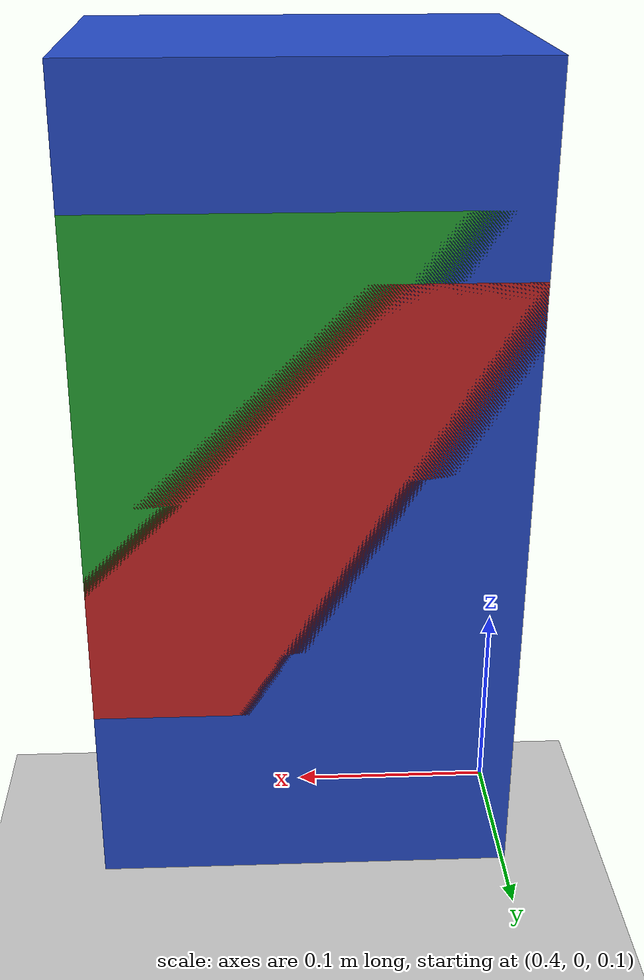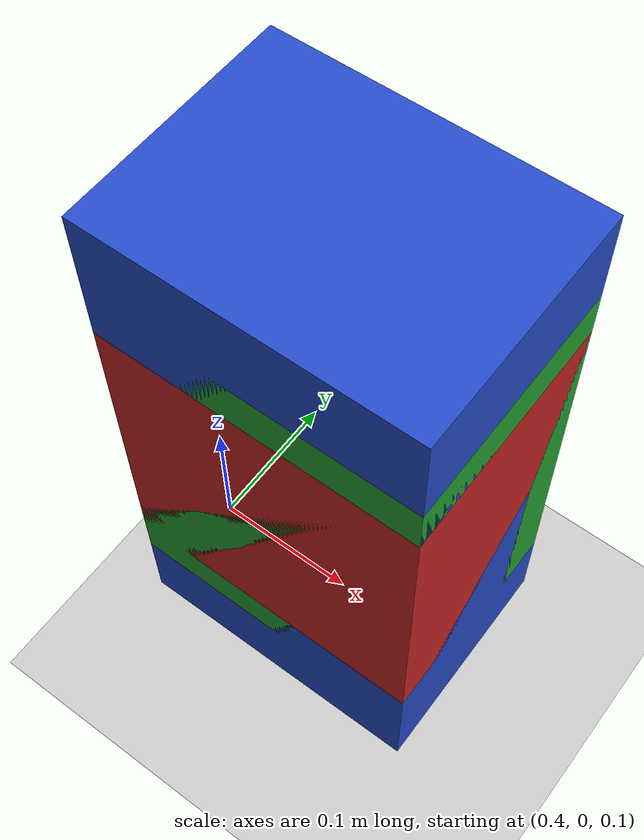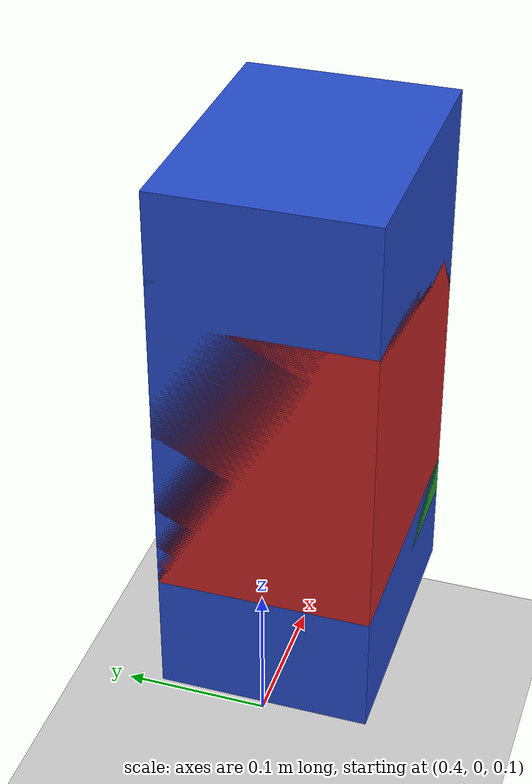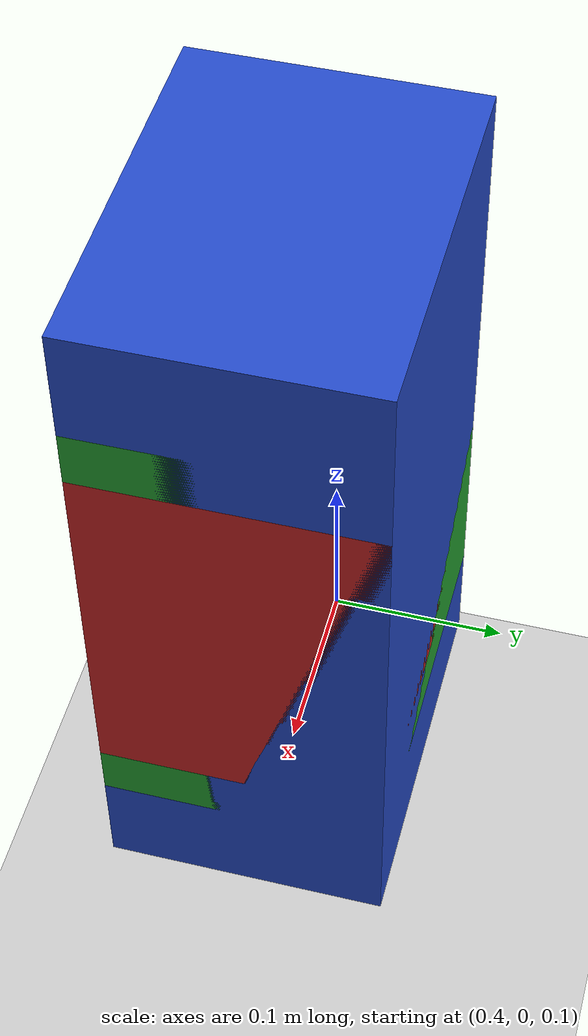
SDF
<sdf version="1.7">
 <world name="default">
  <light name="sun" type="directional">
   <pose>0 0 10 0 -0 0</pose>
   <diffuse>0.8 0.8 0.8 1</diffuse>
   <specular>0.2 0.2 0.2 1</specular>
   <attenuation>
    <range>1000</range>
    <constant>0.9</constant>
    <linear>0.01</linear>
    <quadratic>0.001</quadratic>
   </attenuation>
   <direction>-0.5 0.1 -0.9</direction>
   <spot><inner_angle>0</inner_angle><outer_angle>0</outer_angle><falloff>0</falloff></spot>
  </light>
  <model name="ground_plane">
   <static>1</static>
   <link name="link">
    <collision name="collision">
     <geometry><plane><normal>0 0 1</normal><size>100 100</size></plane></geometry>
     <surface>
      <contact><collide_bitmask>65535</collide_bitmask></contact>
      <friction><ode><mu>100</mu><mu2>50</mu2></ode></friction>
     </surface>
    </collision>
    <visual name="visual">
     <cast_shadows>0</cast_shadows>
     <geometry><plane><normal>0 0 1</normal><size>100 100</size></plane></geometry>
     <material>
      <script><uri>file://media/materials/scripts/gazebo.material</uri><name>Gazebo/Grey</name></script>
     </material>
    </visual>
   </link>
  </model>
  <gravity>0 0 -9.8</gravity>
  <magnetic_field>6e-06 2.3e-05 -4.2e-05</magnetic_field>
  <atmosphere type="adiabatic"/>
  <physics type="ode">
   <max_step_size>0.001</max_step_size>
   <real_time_factor>1</real_time_factor>
   <real_time_update_rate>1000</real_time_update_rate>
  </physics>
  <scene><ambient>0.4 0.4 0.4 1</ambient><background>0.7 0.7 0.7 1</background><shadows>1</shadows></scene>
  <spherical_coordinates>
   <surface_model>EARTH_WGS84</surface_model>
   <latitude_deg>0</latitude_deg>
   <longitude_deg>0</longitude_deg>
   <elevation>0</elevation>
   <heading_deg>0</heading_deg>
  </spherical_coordinates>
  <model name="unit_box">
   <pose>0.5 0. 0.3 0 0 0</pose>
   <link name="link">
    <inertial>
     <mass>10</mass>
     <inertia>
      <ixx>160.6667</ixx>
      <ixy>0</ixy>
      <ixz>0</ixz>
      <iyy>160.6667</iyy>
      <iyz>0</iyz>
      <izz>160.6667</izz>
     </inertia>
    </inertial>
    <collision name="collision">
     <geometry><box><size>0.2 0.15 0.21</size></box></geometry>
     <surface><friction><ode><mu>0</mu><mu2>0</mu2></ode></friction></surface>
    </collision>
    <visual name="visual">
     <geometry><box><size>0.2 0.15 0.21</size></box></geometry>
     <material>
      <script><name>Gazebo/Red</name><uri>file://media/materials/scripts/gazebo.material</uri></script>
     </material>
    </visual>
   </link>
  </model>
  <model name="unit1_box">
   <pose>0.5 0. 0.3 0 0 0</pose>
   <link name="link">
    <inertial>
     <mass>10</mass>
     <inertia>
      <ixx>160.6667</ixx>
      <ixy>0</ixy>
      <ixz>0</ixz>
      <iyy>160.6667</iyy>
      <iyz>0</iyz>
      <izz>160.6667</izz>
     </inertia>
    </inertial>
    <collision name="collision">
     <geometry><box><size>0.2 0.15 0.27</size></box></geometry>
     <surface><friction><ode><mu>0</mu><mu2>0</mu2></ode></friction></surface>
    </collision>
    <visual name="visual">
     <geometry><box><size>0.2 0.15 0.27</size></box></geometry>
     <material>
      <script><name>Gazebo/Green</name><uri>file://media/materials/scripts/gazebo.material</uri></script>
     </material>
    </visual>
   </link>
  </model>
  <model name="unit2_box">
   <pose>0.5 0. 0.3 0 0 0</pose>
   <link name="link">
    <inertial>
     <mass>1</mass>
     <inertia>
      <ixx>160.6667</ixx>
      <ixy>0</ixy>
      <ixz>0</ixz>
      <iyy>160.6667</iyy>
      <iyz>0</iyz>
      <izz>160.6667</izz>
     </inertia>
    </inertial>
    <collision name="collision">
     <geometry><box><size>0.2 0.15 0.39</size></box></geometry>
     <max_contacts>25</max_contacts>
     <surface><friction><ode><mu>0</mu><mu2>0</mu2></ode></friction></surface>
    </collision>
    <visual name="visual">
     <geometry><box><size>0.2 0.15 0.39</size></box></geometry>
     <material>
      <script><name>Gazebo/Blue</name><uri>file://media/materials/scripts/gazebo.material</uri></script>
     </material>
    </visual>
   </link>
  </model>
 </world>
</sdf>
